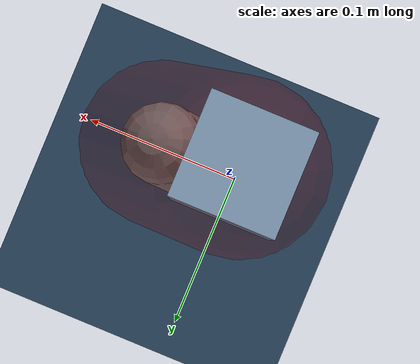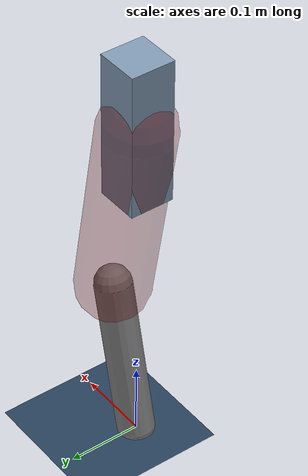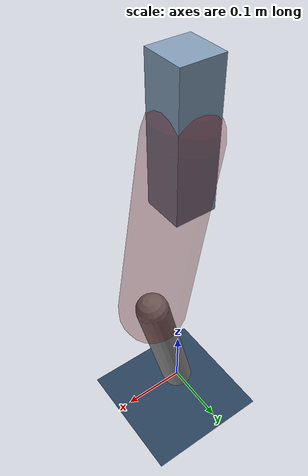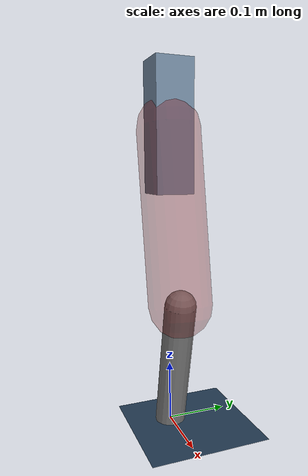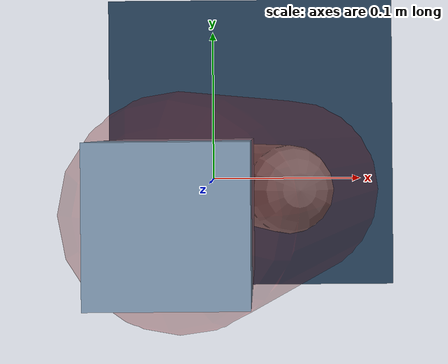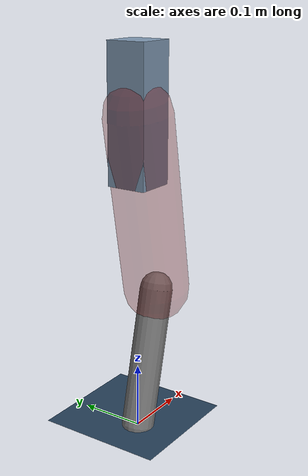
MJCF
<mujoco model="Hopper2D">
	<compiler inertiafromgeom="true" angle="radian" />
	<option timestep="0.001" integrator="implicit" cone="elliptic" solver="Newton" tolerance="1e-10" />

	<default>
		<geom contype="1" conaffinity="1" condim="3" friction="2 0.005 0.0001" solref="0.005 1" />
		<joint limited="true" damping="0.1" />
	</default>

	<asset>
		<texture name="skybox" type="skybox" builtin="gradient" rgb1=".4 .6 .8" rgb2="0 0 0" width="800" height="800" />
		<texture name="grid" type="2d" builtin="checker" rgb1=".1 .2 .3" rgb2=".2 .3 .4" width="300" height="300" mark="edge" markrgb=".2 .3 .4" />
		<material name="ground" texture="grid" texrepeat="1 1" texuniform="true" reflectance="0.1" />
		<material name="leg" rgba="0.5 0.6 0.7 1" />
	</asset>

	<worldbody>

		<geom name="floor" type="plane" size="5 5 0.25" material="ground" />

		<light directional="false" diffuse="0.8 0.8 0.8" specular="0.3 0.3 0.3" pos="0 0 2" dir="0 0 -1" />
		<light mode="targetbodycom" target="base" directional="false" diffuse="0.8 0.8 0.8" specular="0.3 0.3 0.3" pos="0 0 2" dir="0 0 -1" />

		<camera name="fixed" pos="0 -2 1" xyaxes="1 0 0 0 0 1" />
		<camera name="tracking" mode="trackcom" pos="0 -3 1" />

		<body name="root" pos="0 0 0.48387474528946683">
			<joint name="slide_x" type="slide" axis="1 0 0" range="-100 100" />
			<joint name="slide_z" type="slide" axis="0 0 1" range="0 10" />

			<body name="base" pos="0 0 0">
				<geom name="torso" type="box" size="0.03 0.03 0.1" mass="2.184" material="leg" />

				<body name="link1" pos="0 0 0" euler="0 1.3915290653266477 0">
					<joint type="hinge" axis="0 -1 0" pos="0 0 0" name="hinge1" limited="true" range="-3.14 3.14" stiffness="0" damping="0.1" />
					<geom name="thigh" type="capsule" fromto="0 0 0 0.27535597663929867 0 0" size="0.05" rgba="0.5 0 0 0.3" mass="0.9228255392621765" />

					<body name="link2" pos="0.27535597663929867 0 0" euler="0 0.40588916223208915 0">
						<joint type="hinge" axis="0 -1 0" pos="0 0 0" name="hinge2" limited="true" range="-3.14 3.14" stiffness="0" damping="0.1" />
						<geom name="shank" type="capsule" fromto="0 0 0 0.2185187686501682 0 0" size="0.025" mass="0.41641501492013455" />

					</body>
				</body>
			</body>
		</body>
	</worldbody>

	<actuator>
		<motor name="torque1" joint="hinge1" ctrlrange="-56.51737400354735 56.51737400354735" ctrllimited="true" gear="1" />
		<motor name="torque2" joint="hinge2" ctrlrange="-96.8103620224851 96.8103620224851" ctrllimited="true" gear="1" />
	</actuator>
</mujoco>
